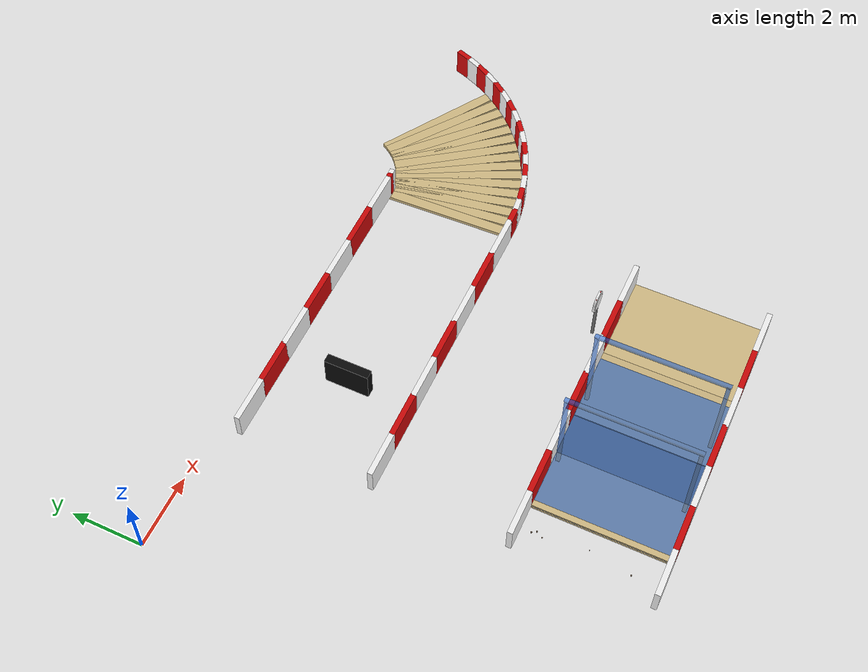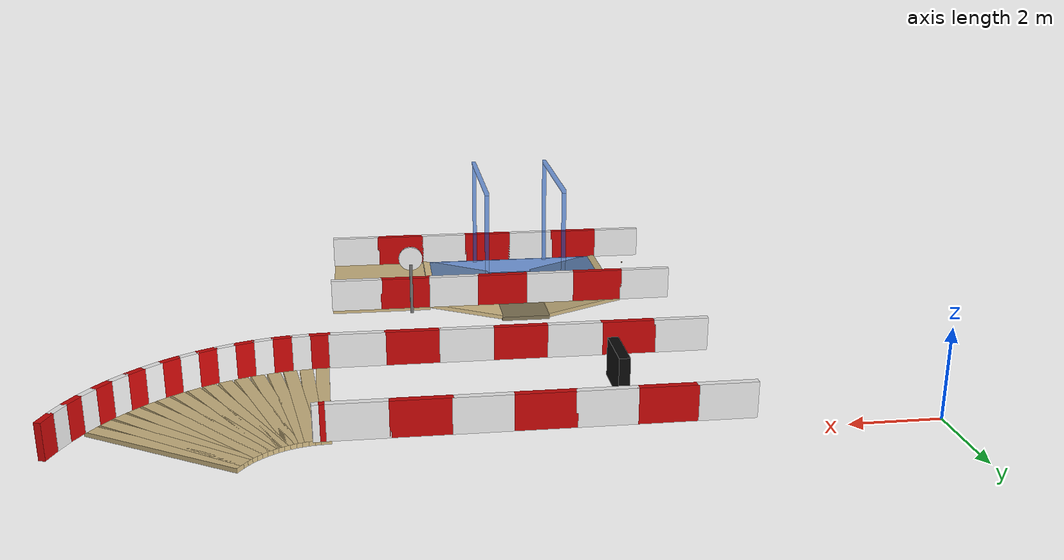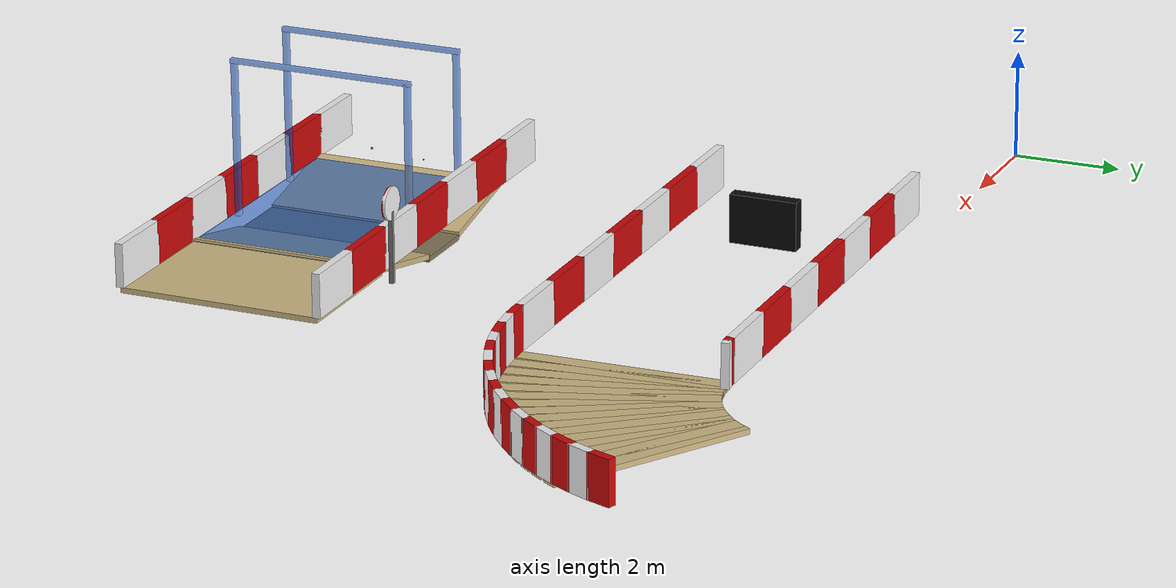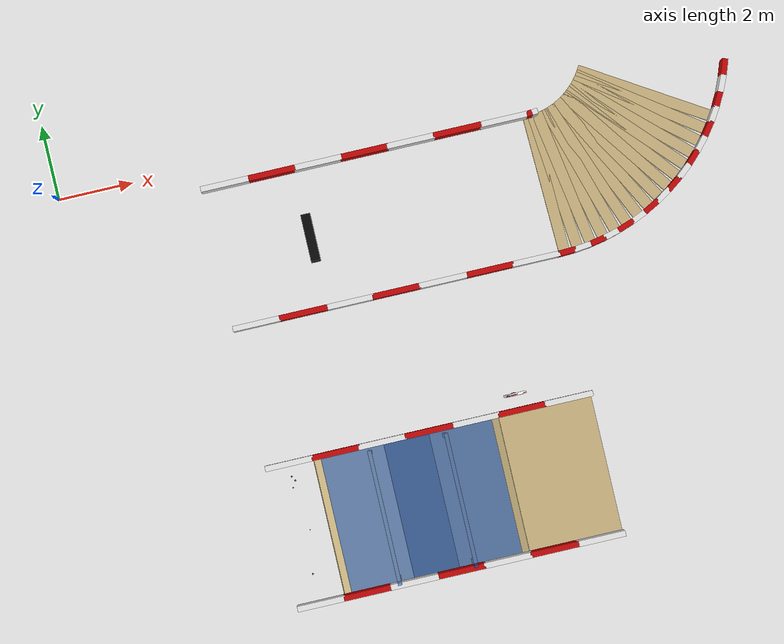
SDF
<sdf version="1.6">
 <world name="evrenos_teknofest_2026">
  <include><uri>model://sun</uri></include>
  <model name="main_course">
   <static>true</static>
   <link name="bottom_start_0">
    <pose>11.250000 -10.000000 -0.050000 0.000000 0.000000 0.000000</pose>
    <collision name="bottom_start_0_collision">
     <geometry><box><size>2.500000 3.750000 0.100000</size></box></geometry>
    </collision>
    <visual name="bottom_start_0_visual">
     <geometry><box><size>2.500000 3.750000 0.100000</size></box></geometry>
     <material><ambient>0.82 0.73 0.52 1</ambient><diffuse>0.82 0.73 0.52 1</diffuse></material>
    </visual>
   </link>
   <link name="water_ramp_down">
    <pose>9.062500 -10.000000 -0.200000 0.000000 -0.210182 0.000000</pose>
    <collision name="water_ramp_down_collision">
     <geometry><box><size>1.917170 3.750000 0.100000</size></box></geometry>
    </collision>
    <visual name="water_ramp_down_visual">
     <geometry><box><size>1.917170 3.750000 0.100000</size></box></geometry>
     <material><ambient>0.82 0.73 0.52 1</ambient><diffuse>0.82 0.73 0.52 1</diffuse></material>
    </visual>
   </link>
   <link name="water_basin_floor">
    <pose>7.500000 -10.000000 -0.450000 0.000000 0.000000 0.000000</pose>
    <collision name="water_basin_floor_collision">
     <geometry><box><size>1.250000 3.750000 0.100000</size></box></geometry>
    </collision>
    <visual name="water_basin_floor_visual">
     <geometry><box><size>1.250000 3.750000 0.100000</size></box></geometry>
     <material><ambient>0.52 0.47 0.35 1</ambient><diffuse>0.52 0.47 0.35 1</diffuse></material>
    </visual>
   </link>
   <link name="water_ramp_up">
    <pose>5.937500 -10.000000 -0.200000 0.000000 0.210182 0.000000</pose>
    <collision name="water_ramp_up_collision">
     <geometry><box><size>1.917170 3.750000 0.100000</size></box></geometry>
    </collision>
    <visual name="water_ramp_up_visual">
     <geometry><box><size>1.917170 3.750000 0.100000</size></box></geometry>
     <material><ambient>0.82 0.73 0.52 1</ambient><diffuse>0.82 0.73 0.52 1</diffuse></material>
    </visual>
   </link>
   <link name="water_surface">
    <pose>7.500000 -10.000000 0.005000 0.000000 0.000000 0.000000</pose>
    <visual name="water_surface_visual">
     <geometry><box><size>5.000000 3.625000 0.010000</size></box></geometry>
     <material><ambient>0.05 0.35 0.85 0.55</ambient><diffuse>0.05 0.35 0.85 0.55</diffuse></material>
    </visual>
   </link>
   <link name="rain_post_5.2_-9.35">
    <pose>6.500000 -11.687500 1.450000 0.000000 0.000000 0.000000</pose>
    <collision name="rain_post_5.2_-9.35_collision">
     <geometry><box><size>0.100000 0.100000 2.900000</size></box></geometry>
    </collision>
    <visual name="rain_post_5.2_-9.35_visual">
     <geometry><box><size>0.100000 0.100000 2.900000</size></box></geometry>
     <material><ambient>0.05 0.35 0.85 0.55</ambient><diffuse>0.05 0.35 0.85 0.55</diffuse></material>
    </visual>
   </link>
   <link name="rain_post_5.2_-6.65">
    <pose>6.500000 -8.312500 1.450000 0.000000 0.000000 0.000000</pose>
    <collision name="rain_post_5.2_-6.65_collision">
     <geometry><box><size>0.100000 0.100000 2.900000</size></box></geometry>
    </collision>
    <visual name="rain_post_5.2_-6.65_visual">
     <geometry><box><size>0.100000 0.100000 2.900000</size></box></geometry>
     <material><ambient>0.05 0.35 0.85 0.55</ambient><diffuse>0.05 0.35 0.85 0.55</diffuse></material>
    </visual>
   </link>
   <link name="rain_post_6.8_-9.35">
    <pose>8.500000 -11.687500 1.450000 0.000000 0.000000 0.000000</pose>
    <collision name="rain_post_6.8_-9.35_collision">
     <geometry><box><size>0.100000 0.100000 2.900000</size></box></geometry>
    </collision>
    <visual name="rain_post_6.8_-9.35_visual">
     <geometry><box><size>0.100000 0.100000 2.900000</size></box></geometry>
     <material><ambient>0.05 0.35 0.85 0.55</ambient><diffuse>0.05 0.35 0.85 0.55</diffuse></material>
    </visual>
   </link>
   <link name="rain_post_6.8_-6.65">
    <pose>8.500000 -8.312500 1.450000 0.000000 0.000000 0.000000</pose>
    <collision name="rain_post_6.8_-6.65_collision">
     <geometry><box><size>0.100000 0.100000 2.900000</size></box></geometry>
    </collision>
    <visual name="rain_post_6.8_-6.65_visual">
     <geometry><box><size>0.100000 0.100000 2.900000</size></box></geometry>
     <material><ambient>0.05 0.35 0.85 0.55</ambient><diffuse>0.05 0.35 0.85 0.55</diffuse></material>
    </visual>
   </link>
   <link name="rain_cross_5.2">
    <pose>6.500000 -10.000000 2.900000 0.000000 0.000000 0.000000</pose>
    <collision name="rain_cross_5.2_collision">
     <geometry><box><size>0.100000 3.500000 0.080000</size></box></geometry>
    </collision>
    <visual name="rain_cross_5.2_visual">
     <geometry><box><size>0.100000 3.500000 0.080000</size></box></geometry>
     <material><ambient>0.05 0.35 0.85 0.55</ambient><diffuse>0.05 0.35 0.85 0.55</diffuse></material>
    </visual>
   </link>
   <link name="rain_cross_6.8">
    <pose>8.500000 -10.000000 2.900000 0.000000 0.000000 0.000000</pose>
    <collision name="rain_cross_6.8_collision">
     <geometry><box><size>0.100000 3.500000 0.080000</size></box></geometry>
    </collision>
    <visual name="rain_cross_6.8_visual">
     <geometry><box><size>0.100000 3.500000 0.080000</size></box></geometry>
     <material><ambient>0.05 0.35 0.85 0.55</ambient><diffuse>0.05 0.35 0.85 0.55</diffuse></material>
    </visual>
   </link>
   <link name="gravel_8">
    <pose>4.409625 -8.604750 0.012400 0.000000 0.000000 0.000000</pose>
    <collision name="gravel_8_collision"><geometry><sphere><radius>0.0225</radius></sphere></geometry></collision>
    <visual name="gravel_8_visual">
     <geometry><sphere><radius>0.0225</radius></sphere></geometry>
     <material><ambient>0.43 0.35 0.27 1</ambient><diffuse>0.43 0.35 0.27 1</diffuse></material>
    </visual>
   </link>
   <link name="gravel_9">
    <pose>4.498500 -9.955875 0.007100 0.000000 0.000000 0.000000</pose>
    <collision name="gravel_9_collision"><geometry><sphere><radius>0.0130</radius></sphere></geometry></collision>
    <visual name="gravel_9_visual">
     <geometry><sphere><radius>0.0130</radius></sphere></geometry>
     <material><ambient>0.43 0.35 0.27 1</ambient><diffuse>0.43 0.35 0.27 1</diffuse></material>
    </visual>
   </link>
   <link name="gravel_35">
    <pose>4.343750 -8.481375 0.012600 0.000000 0.000000 0.000000</pose>
    <collision name="gravel_35_collision">
     <geometry><sphere><radius>0.0230</radius></sphere></geometry>
    </collision>
    <visual name="gravel_35_visual">
     <geometry><sphere><radius>0.0230</radius></sphere></geometry>
     <material><ambient>0.43 0.35 0.27 1</ambient><diffuse>0.43 0.35 0.27 1</diffuse></material>
    </visual>
   </link>
   <link name="gravel_46">
    <pose>4.312250 -8.778000 0.010200 0.000000 0.000000 0.000000</pose>
    <collision name="gravel_46_collision">
     <geometry><sphere><radius>0.0186</radius></sphere></geometry>
    </collision>
    <visual name="gravel_46_visual">
     <geometry><sphere><radius>0.0186</radius></sphere></geometry>
     <material><ambient>0.43 0.35 0.27 1</ambient><diffuse>0.43 0.35 0.27 1</diffuse></material>
    </visual>
   </link>
   <link name="gravel_63">
    <pose>4.304625 -11.103750 0.012600 0.000000 0.000000 0.000000</pose>
    <collision name="gravel_63_collision">
     <geometry><sphere><radius>0.0230</radius></sphere></geometry>
    </collision>
    <visual name="gravel_63_visual">
     <geometry><sphere><radius>0.0230</radius></sphere></geometry>
     <material><ambient>0.43 0.35 0.27 1</ambient><diffuse>0.43 0.35 0.27 1</diffuse></material>
    </visual>
   </link>
   <link name="right_turn_road_0">
    <pose>12.622750 -2.498000 -0.050000 0.000000 0.000000 0.032725</pose>
    <collision name="right_turn_road_0_collision">
     <geometry><box><size>0.294500 3.750000 0.100000</size></box></geometry>
    </collision>
    <visual name="right_turn_road_0_visual">
     <geometry><box><size>0.294500 3.750000 0.100000</size></box></geometry>
     <material><ambient>0.82 0.73 0.52 1</ambient><diffuse>0.82 0.73 0.52 1</diffuse></material>
    </visual>
   </link>
   <link name="right_turn_road_1">
    <pose>12.867625 -2.482000 -0.050000 0.000000 0.000000 0.098175</pose>
    <collision name="right_turn_road_1_collision">
     <geometry><box><size>0.294500 3.750000 0.100000</size></box></geometry>
    </collision>
    <visual name="right_turn_road_1_visual">
     <geometry><box><size>0.294500 3.750000 0.100000</size></box></geometry>
     <material><ambient>0.82 0.73 0.52 1</ambient><diffuse>0.82 0.73 0.52 1</diffuse></material>
    </visual>
   </link>
   <link name="right_turn_road_2">
    <pose>13.110875 -2.449875 -0.050000 0.000000 0.000000 0.163625</pose>
    <collision name="right_turn_road_2_collision">
     <geometry><box><size>0.294500 3.750000 0.100000</size></box></geometry>
    </collision>
    <visual name="right_turn_road_2_visual">
     <geometry><box><size>0.294500 3.750000 0.100000</size></box></geometry>
     <material><ambient>0.82 0.73 0.52 1</ambient><diffuse>0.82 0.73 0.52 1</diffuse></material>
    </visual>
   </link>
   <link name="right_turn_road_3">
    <pose>13.351500 -2.402000 -0.050000 0.000000 0.000000 0.229074</pose>
    <collision name="right_turn_road_3_collision">
     <geometry><box><size>0.294500 3.750000 0.100000</size></box></geometry>
    </collision>
    <visual name="right_turn_road_3_visual">
     <geometry><box><size>0.294500 3.750000 0.100000</size></box></geometry>
     <material><ambient>0.82 0.73 0.52 1</ambient><diffuse>0.82 0.73 0.52 1</diffuse></material>
    </visual>
   </link>
   <link name="right_turn_road_4">
    <pose>13.588625 -2.338500 -0.050000 0.000000 0.000000 0.294524</pose>
    <collision name="right_turn_road_4_collision">
     <geometry><box><size>0.294500 3.750000 0.100000</size></box></geometry>
    </collision>
    <visual name="right_turn_road_4_visual">
     <geometry><box><size>0.294500 3.750000 0.100000</size></box></geometry>
     <material><ambient>0.82 0.73 0.52 1</ambient><diffuse>0.82 0.73 0.52 1</diffuse></material>
    </visual>
   </link>
   <link name="right_turn_road_5">
    <pose>13.821000 -2.259625 -0.050000 0.000000 0.000000 0.359974</pose>
    <collision name="right_turn_road_5_collision">
     <geometry><box><size>0.294500 3.750000 0.100000</size></box></geometry>
    </collision>
    <visual name="right_turn_road_5_visual">
     <geometry><box><size>0.294500 3.750000 0.100000</size></box></geometry>
     <material><ambient>0.82 0.73 0.52 1</ambient><diffuse>0.82 0.73 0.52 1</diffuse></material>
    </visual>
   </link>
   <link name="right_turn_road_6">
    <pose>14.047625 -2.165750 -0.050000 0.000000 0.000000 0.425424</pose>
    <collision name="right_turn_road_6_collision">
     <geometry><box><size>0.294500 3.750000 0.100000</size></box></geometry>
    </collision>
    <visual name="right_turn_road_6_visual">
     <geometry><box><size>0.294500 3.750000 0.100000</size></box></geometry>
     <material><ambient>0.82 0.73 0.52 1</ambient><diffuse>0.82 0.73 0.52 1</diffuse></material>
    </visual>
   </link>
   <link name="right_turn_road_7">
    <pose>14.267750 -2.057250 -0.050000 0.000000 0.000000 0.490874</pose>
    <collision name="right_turn_road_7_collision">
     <geometry><box><size>0.294500 3.750000 0.100000</size></box></geometry>
    </collision>
    <visual name="right_turn_road_7_visual">
     <geometry><box><size>0.294500 3.750000 0.100000</size></box></geometry>
     <material><ambient>0.82 0.73 0.52 1</ambient><diffuse>0.82 0.73 0.52 1</diffuse></material>
    </visual>
   </link>
   <link name="right_turn_road_8">
    <pose>14.480250 -1.934500 -0.050000 0.000000 0.000000 0.556324</pose>
    <collision name="right_turn_road_8_collision">
     <geometry><box><size>0.294500 3.750000 0.100000</size></box></geometry>
    </collision>
    <visual name="right_turn_road_8_visual">
     <geometry><box><size>0.294500 3.750000 0.100000</size></box></geometry>
     <material><ambient>0.82 0.73 0.52 1</ambient><diffuse>0.82 0.73 0.52 1</diffuse></material>
    </visual>
   </link>
   <link name="right_turn_road_9">
    <pose>14.684250 -1.798125 -0.050000 0.000000 0.000000 0.621774</pose>
    <collision name="right_turn_road_9_collision">
     <geometry><box><size>0.294500 3.750000 0.100000</size></box></geometry>
    </collision>
    <visual name="right_turn_road_9_visual">
     <geometry><box><size>0.294500 3.750000 0.100000</size></box></geometry>
     <material><ambient>0.82 0.73 0.52 1</ambient><diffuse>0.82 0.73 0.52 1</diffuse></material>
    </visual>
   </link>
   <link name="right_turn_road_10">
    <pose>14.879000 -1.648750 -0.050000 0.000000 0.000000 0.687223</pose>
    <collision name="right_turn_road_10_collision">
     <geometry><box><size>0.294500 3.750000 0.100000</size></box></geometry>
    </collision>
    <visual name="right_turn_road_10_visual">
     <geometry><box><size>0.294500 3.750000 0.100000</size></box></geometry>
     <material><ambient>0.82 0.73 0.52 1</ambient><diffuse>0.82 0.73 0.52 1</diffuse></material>
    </visual>
   </link>
   <link name="right_turn_road_11">
    <pose>15.063500 -1.487000 -0.050000 0.000000 0.000000 0.752673</pose>
    <collision name="right_turn_road_11_collision">
     <geometry><box><size>0.294500 3.750000 0.100000</size></box></geometry>
    </collision>
    <visual name="right_turn_road_11_visual">
     <geometry><box><size>0.294500 3.750000 0.100000</size></box></geometry>
     <material><ambient>0.82 0.73 0.52 1</ambient><diffuse>0.82 0.73 0.52 1</diffuse></material>
    </visual>
   </link>
   <link name="right_turn_road_12">
    <pose>15.237000 -1.313500 -0.050000 0.000000 0.000000 0.818123</pose>
    <collision name="right_turn_road_12_collision">
     <geometry><box><size>0.294500 3.750000 0.100000</size></box></geometry>
    </collision>
    <visual name="right_turn_road_12_visual">
     <geometry><box><size>0.294500 3.750000 0.100000</size></box></geometry>
     <material><ambient>0.82 0.73 0.52 1</ambient><diffuse>0.82 0.73 0.52 1</diffuse></material>
    </visual>
   </link>
   <link name="right_turn_road_13">
    <pose>15.398750 -1.129000 -0.050000 0.000000 0.000000 0.883573</pose>
    <collision name="right_turn_road_13_collision">
     <geometry><box><size>0.294500 3.750000 0.100000</size></box></geometry>
    </collision>
    <visual name="right_turn_road_13_visual">
     <geometry><box><size>0.294500 3.750000 0.100000</size></box></geometry>
     <material><ambient>0.82 0.73 0.52 1</ambient><diffuse>0.82 0.73 0.52 1</diffuse></material>
    </visual>
   </link>
   <link name="right_turn_road_14">
    <pose>15.548125 -0.934250 -0.050000 0.000000 0.000000 0.949023</pose>
    <collision name="right_turn_road_14_collision">
     <geometry><box><size>0.294500 3.750000 0.100000</size></box></geometry>
    </collision>
    <visual name="right_turn_road_14_visual">
     <geometry><box><size>0.294500 3.750000 0.100000</size></box></geometry>
     <material><ambient>0.82 0.73 0.52 1</ambient><diffuse>0.82 0.73 0.52 1</diffuse></material>
    </visual>
   </link>
   <link name="right_turn_road_15">
    <pose>15.684500 -0.730250 -0.050000 0.000000 0.000000 1.014473</pose>
    <collision name="right_turn_road_15_collision">
     <geometry><box><size>0.294500 3.750000 0.100000</size></box></geometry>
    </collision>
    <visual name="right_turn_road_15_visual">
     <geometry><box><size>0.294500 3.750000 0.100000</size></box></geometry>
     <material><ambient>0.82 0.73 0.52 1</ambient><diffuse>0.82 0.73 0.52 1</diffuse></material>
    </visual>
   </link>
   <link name="bottom_bar_-1_13">
    <pose>4.375000 -11.875000 0.400000 0.000000 0.000000 0.000000</pose>
    <collision name="bottom_bar_-1_13_collision">
     <geometry><box><size>1.287500 0.150000 0.800000</size></box></geometry>
    </collision>
    <visual name="bottom_bar_-1_13_visual">
     <geometry><box><size>1.287500 0.150000 0.800000</size></box></geometry>
     <material><ambient>0.95 0.95 0.95 1</ambient><diffuse>0.95 0.95 0.95 1</diffuse></material>
    </visual>
   </link>
   <link name="bottom_bar_-1_14">
    <pose>5.625000 -11.875000 0.400000 0.000000 0.000000 0.000000</pose>
    <collision name="bottom_bar_-1_14_collision">
     <geometry><box><size>1.287500 0.150000 0.800000</size></box></geometry>
    </collision>
    <visual name="bottom_bar_-1_14_visual">
     <geometry><box><size>1.287500 0.150000 0.800000</size></box></geometry>
     <material><ambient>0.8 0.03 0.03 1</ambient><diffuse>0.8 0.03 0.03 1</diffuse></material>
    </visual>
   </link>
   <link name="bottom_bar_-1_15">
    <pose>6.875000 -11.875000 0.400000 0.000000 0.000000 0.000000</pose>
    <collision name="bottom_bar_-1_15_collision">
     <geometry><box><size>1.287500 0.150000 0.800000</size></box></geometry>
    </collision>
    <visual name="bottom_bar_-1_15_visual">
     <geometry><box><size>1.287500 0.150000 0.800000</size></box></geometry>
     <material><ambient>0.95 0.95 0.95 1</ambient><diffuse>0.95 0.95 0.95 1</diffuse></material>
    </visual>
   </link>
   <link name="bottom_bar_-1_16">
    <pose>8.125000 -11.875000 0.400000 0.000000 0.000000 0.000000</pose>
    <collision name="bottom_bar_-1_16_collision">
     <geometry><box><size>1.287500 0.150000 0.800000</size></box></geometry>
    </collision>
    <visual name="bottom_bar_-1_16_visual">
     <geometry><box><size>1.287500 0.150000 0.800000</size></box></geometry>
     <material><ambient>0.8 0.03 0.03 1</ambient><diffuse>0.8 0.03 0.03 1</diffuse></material>
    </visual>
   </link>
   <link name="bottom_bar_-1_17">
    <pose>9.375000 -11.875000 0.400000 0.000000 0.000000 0.000000</pose>
    <collision name="bottom_bar_-1_17_collision">
     <geometry><box><size>1.287500 0.150000 0.800000</size></box></geometry>
    </collision>
    <visual name="bottom_bar_-1_17_visual">
     <geometry><box><size>1.287500 0.150000 0.800000</size></box></geometry>
     <material><ambient>0.95 0.95 0.95 1</ambient><diffuse>0.95 0.95 0.95 1</diffuse></material>
    </visual>
   </link>
   <link name="bottom_bar_-1_18">
    <pose>10.625000 -11.875000 0.400000 0.000000 0.000000 0.000000</pose>
    <collision name="bottom_bar_-1_18_collision">
     <geometry><box><size>1.287500 0.150000 0.800000</size></box></geometry>
    </collision>
    <visual name="bottom_bar_-1_18_visual">
     <geometry><box><size>1.287500 0.150000 0.800000</size></box></geometry>
     <material><ambient>0.8 0.03 0.03 1</ambient><diffuse>0.8 0.03 0.03 1</diffuse></material>
    </visual>
   </link>
   <link name="bottom_bar_-1_19">
    <pose>11.875000 -11.875000 0.400000 0.000000 0.000000 0.000000</pose>
    <collision name="bottom_bar_-1_19_collision">
     <geometry><box><size>1.287500 0.150000 0.800000</size></box></geometry>
    </collision>
    <visual name="bottom_bar_-1_19_visual">
     <geometry><box><size>1.287500 0.150000 0.800000</size></box></geometry>
     <material><ambient>0.95 0.95 0.95 1</ambient><diffuse>0.95 0.95 0.95 1</diffuse></material>
    </visual>
   </link>
   <link name="bottom_bar_1_13">
    <pose>4.375000 -8.125000 0.400000 0.000000 0.000000 0.000000</pose>
    <collision name="bottom_bar_1_13_collision">
     <geometry><box><size>1.287500 0.150000 0.800000</size></box></geometry>
    </collision>
    <visual name="bottom_bar_1_13_visual">
     <geometry><box><size>1.287500 0.150000 0.800000</size></box></geometry>
     <material><ambient>0.95 0.95 0.95 1</ambient><diffuse>0.95 0.95 0.95 1</diffuse></material>
    </visual>
   </link>
   <link name="bottom_bar_1_14">
    <pose>5.625000 -8.125000 0.400000 0.000000 0.000000 0.000000</pose>
    <collision name="bottom_bar_1_14_collision">
     <geometry><box><size>1.287500 0.150000 0.800000</size></box></geometry>
    </collision>
    <visual name="bottom_bar_1_14_visual">
     <geometry><box><size>1.287500 0.150000 0.800000</size></box></geometry>
     <material><ambient>0.8 0.03 0.03 1</ambient><diffuse>0.8 0.03 0.03 1</diffuse></material>
    </visual>
   </link>
   <link name="bottom_bar_1_15">
    <pose>6.875000 -8.125000 0.400000 0.000000 0.000000 0.000000</pose>
    <collision name="bottom_bar_1_15_collision">
     <geometry><box><size>1.287500 0.150000 0.800000</size></box></geometry>
    </collision>
    <visual name="bottom_bar_1_15_visual">
     <geometry><box><size>1.287500 0.150000 0.800000</size></box></geometry>
     <material><ambient>0.95 0.95 0.95 1</ambient><diffuse>0.95 0.95 0.95 1</diffuse></material>
    </visual>
   </link>
   <link name="bottom_bar_1_16">
    <pose>8.125000 -8.125000 0.400000 0.000000 0.000000 0.000000</pose>
    <collision name="bottom_bar_1_16_collision">
     <geometry><box><size>1.287500 0.150000 0.800000</size></box></geometry>
    </collision>
    <visual name="bottom_bar_1_16_visual">
     <geometry><box><size>1.287500 0.150000 0.800000</size></box></geometry>
     <material><ambient>0.8 0.03 0.03 1</ambient><diffuse>0.8 0.03 0.03 1</diffuse></material>
    </visual>
   </link>
   <link name="bottom_bar_1_17">
    <pose>9.375000 -8.125000 0.400000 0.000000 0.000000 0.000000</pose>
    <collision name="bottom_bar_1_17_collision">
     <geometry><box><size>1.287500 0.150000 0.800000</size></box></geometry>
    </collision>
    <visual name="bottom_bar_1_17_visual">
     <geometry><box><size>1.287500 0.150000 0.800000</size></box></geometry>
     <material><ambient>0.95 0.95 0.95 1</ambient><diffuse>0.95 0.95 0.95 1</diffuse></material>
    </visual>
   </link>
   <link name="bottom_bar_1_18">
    <pose>10.625000 -8.125000 0.400000 0.000000 0.000000 0.000000</pose>
    <collision name="bottom_bar_1_18_collision">
     <geometry><box><size>1.287500 0.150000 0.800000</size></box></geometry>
    </collision>
    <visual name="bottom_bar_1_18_visual">
     <geometry><box><size>1.287500 0.150000 0.800000</size></box></geometry>
     <material><ambient>0.8 0.03 0.03 1</ambient><diffuse>0.8 0.03 0.03 1</diffuse></material>
    </visual>
   </link>
   <link name="bottom_bar_1_19">
    <pose>11.875000 -8.125000 0.400000 0.000000 0.000000 0.000000</pose>
    <collision name="bottom_bar_1_19_collision">
     <geometry><box><size>1.287500 0.150000 0.800000</size></box></geometry>
    </collision>
    <visual name="bottom_bar_1_19_visual">
     <geometry><box><size>1.287500 0.150000 0.800000</size></box></geometry>
     <material><ambient>0.95 0.95 0.95 1</ambient><diffuse>0.95 0.95 0.95 1</diffuse></material>
    </visual>
   </link>
   <link name="middle_bar_-1_13">
    <pose>4.375000 -4.375000 0.400000 0.000000 0.000000 0.000000</pose>
    <collision name="middle_bar_-1_13_collision">
     <geometry><box><size>1.287500 0.150000 0.800000</size></box></geometry>
    </collision>
    <visual name="middle_bar_-1_13_visual">
     <geometry><box><size>1.287500 0.150000 0.800000</size></box></geometry>
     <material><ambient>0.95 0.95 0.95 1</ambient><diffuse>0.95 0.95 0.95 1</diffuse></material>
    </visual>
   </link>
   <link name="middle_bar_-1_14">
    <pose>5.625000 -4.375000 0.400000 0.000000 0.000000 0.000000</pose>
    <collision name="middle_bar_-1_14_collision">
     <geometry><box><size>1.287500 0.150000 0.800000</size></box></geometry>
    </collision>
    <visual name="middle_bar_-1_14_visual">
     <geometry><box><size>1.287500 0.150000 0.800000</size></box></geometry>
     <material><ambient>0.8 0.03 0.03 1</ambient><diffuse>0.8 0.03 0.03 1</diffuse></material>
    </visual>
   </link>
   <link name="middle_bar_-1_15">
    <pose>6.875000 -4.375000 0.400000 0.000000 0.000000 0.000000</pose>
    <collision name="middle_bar_-1_15_collision">
     <geometry><box><size>1.287500 0.150000 0.800000</size></box></geometry>
    </collision>
    <visual name="middle_bar_-1_15_visual">
     <geometry><box><size>1.287500 0.150000 0.800000</size></box></geometry>
     <material><ambient>0.95 0.95 0.95 1</ambient><diffuse>0.95 0.95 0.95 1</diffuse></material>
    </visual>
   </link>
   <link name="middle_bar_-1_16">
    <pose>8.125000 -4.375000 0.400000 0.000000 0.000000 0.000000</pose>
    <collision name="middle_bar_-1_16_collision">
     <geometry><box><size>1.287500 0.150000 0.800000</size></box></geometry>
    </collision>
    <visual name="middle_bar_-1_16_visual">
     <geometry><box><size>1.287500 0.150000 0.800000</size></box></geometry>
     <material><ambient>0.8 0.03 0.03 1</ambient><diffuse>0.8 0.03 0.03 1</diffuse></material>
    </visual>
   </link>
   <link name="middle_bar_-1_17">
    <pose>9.375000 -4.375000 0.400000 0.000000 0.000000 0.000000</pose>
    <collision name="middle_bar_-1_17_collision">
     <geometry><box><size>1.287500 0.150000 0.800000</size></box></geometry>
    </collision>
    <visual name="middle_bar_-1_17_visual">
     <geometry><box><size>1.287500 0.150000 0.800000</size></box></geometry>
     <material><ambient>0.95 0.95 0.95 1</ambient><diffuse>0.95 0.95 0.95 1</diffuse></material>
    </visual>
   </link>
   <link name="middle_bar_-1_18">
    <pose>10.625000 -4.375000 0.400000 0.000000 0.000000 0.000000</pose>
    <collision name="middle_bar_-1_18_collision">
     <geometry><box><size>1.287500 0.150000 0.800000</size></box></geometry>
    </collision>
    <visual name="middle_bar_-1_18_visual">
     <geometry><box><size>1.287500 0.150000 0.800000</size></box></geometry>
     <material><ambient>0.8 0.03 0.03 1</ambient><diffuse>0.8 0.03 0.03 1</diffuse></material>
    </visual>
   </link>
   <link name="middle_bar_-1_19">
    <pose>11.875000 -4.375000 0.400000 0.000000 0.000000 0.000000</pose>
    <collision name="middle_bar_-1_19_collision">
     <geometry><box><size>1.287500 0.150000 0.800000</size></box></geometry>
    </collision>
    <visual name="middle_bar_-1_19_visual">
     <geometry><box><size>1.287500 0.150000 0.800000</size></box></geometry>
     <material><ambient>0.95 0.95 0.95 1</ambient><diffuse>0.95 0.95 0.95 1</diffuse></material>
    </visual>
   </link>
   <link name="middle_bar_1_13">
    <pose>4.375000 -0.625000 0.400000 0.000000 0.000000 0.000000</pose>
    <collision name="middle_bar_1_13_collision">
     <geometry><box><size>1.287500 0.150000 0.800000</size></box></geometry>
    </collision>
    <visual name="middle_bar_1_13_visual">
     <geometry><box><size>1.287500 0.150000 0.800000</size></box></geometry>
     <material><ambient>0.95 0.95 0.95 1</ambient><diffuse>0.95 0.95 0.95 1</diffuse></material>
    </visual>
   </link>
   <link name="middle_bar_1_14">
    <pose>5.625000 -0.625000 0.400000 0.000000 0.000000 0.000000</pose>
    <collision name="middle_bar_1_14_collision">
     <geometry><box><size>1.287500 0.150000 0.800000</size></box></geometry>
    </collision>
    <visual name="middle_bar_1_14_visual">
     <geometry><box><size>1.287500 0.150000 0.800000</size></box></geometry>
     <material><ambient>0.8 0.03 0.03 1</ambient><diffuse>0.8 0.03 0.03 1</diffuse></material>
    </visual>
   </link>
   <link name="middle_bar_1_15">
    <pose>6.875000 -0.625000 0.400000 0.000000 0.000000 0.000000</pose>
    <collision name="middle_bar_1_15_collision">
     <geometry><box><size>1.287500 0.150000 0.800000</size></box></geometry>
    </collision>
    <visual name="middle_bar_1_15_visual">
     <geometry><box><size>1.287500 0.150000 0.800000</size></box></geometry>
     <material><ambient>0.95 0.95 0.95 1</ambient><diffuse>0.95 0.95 0.95 1</diffuse></material>
    </visual>
   </link>
   <link name="middle_bar_1_16">
    <pose>8.125000 -0.625000 0.400000 0.000000 0.000000 0.000000</pose>
    <collision name="middle_bar_1_16_collision">
     <geometry><box><size>1.287500 0.150000 0.800000</size></box></geometry>
    </collision>
    <visual name="middle_bar_1_16_visual">
     <geometry><box><size>1.287500 0.150000 0.800000</size></box></geometry>
     <material><ambient>0.8 0.03 0.03 1</ambient><diffuse>0.8 0.03 0.03 1</diffuse></material>
    </visual>
   </link>
   <link name="middle_bar_1_17">
    <pose>9.375000 -0.625000 0.400000 0.000000 0.000000 0.000000</pose>
    <collision name="middle_bar_1_17_collision">
     <geometry><box><size>1.287500 0.150000 0.800000</size></box></geometry>
    </collision>
    <visual name="middle_bar_1_17_visual">
     <geometry><box><size>1.287500 0.150000 0.800000</size></box></geometry>
     <material><ambient>0.95 0.95 0.95 1</ambient><diffuse>0.95 0.95 0.95 1</diffuse></material>
    </visual>
   </link>
   <link name="middle_bar_1_18">
    <pose>10.625000 -0.625000 0.400000 0.000000 0.000000 0.000000</pose>
    <collision name="middle_bar_1_18_collision">
     <geometry><box><size>1.287500 0.150000 0.800000</size></box></geometry>
    </collision>
    <visual name="middle_bar_1_18_visual">
     <geometry><box><size>1.287500 0.150000 0.800000</size></box></geometry>
     <material><ambient>0.8 0.03 0.03 1</ambient><diffuse>0.8 0.03 0.03 1</diffuse></material>
    </visual>
   </link>
   <link name="middle_bar_1_19">
    <pose>11.875000 -0.625000 0.400000 0.000000 0.000000 0.000000</pose>
    <collision name="middle_bar_1_19_collision">
     <geometry><box><size>1.287500 0.150000 0.800000</size></box></geometry>
    </collision>
    <visual name="middle_bar_1_19_visual">
     <geometry><box><size>1.287500 0.150000 0.800000</size></box></geometry>
     <material><ambient>0.95 0.95 0.95 1</ambient><diffuse>0.95 0.95 0.95 1</diffuse></material>
    </visual>
   </link>
   <link name="right_turn_bar_0_0">
    <pose>12.570125 -0.623750 0.400000 0.000000 0.000000 0.037400</pose>
    <collision name="right_turn_bar_0_0_collision">
     <geometry><box><size>0.154250 0.150000 0.800000</size></box></geometry>
    </collision>
    <visual name="right_turn_bar_0_0_visual">
     <geometry><box><size>0.154250 0.150000 0.800000</size></box></geometry>
     <material><ambient>0.8 0.03 0.03 1</ambient><diffuse>0.8 0.03 0.03 1</diffuse></material>
    </visual>
   </link>
   <link name="right_turn_bar_0_1">
    <pose>12.709875 -0.613250 0.400000 0.000000 0.000000 0.112200</pose>
    <collision name="right_turn_bar_0_1_collision">
     <geometry><box><size>0.154250 0.150000 0.800000</size></box></geometry>
    </collision>
    <visual name="right_turn_bar_0_1_visual">
     <geometry><box><size>0.154250 0.150000 0.800000</size></box></geometry>
     <material><ambient>0.95 0.95 0.95 1</ambient><diffuse>0.95 0.95 0.95 1</diffuse></material>
    </visual>
   </link>
   <link name="right_turn_bar_1_0">
    <pose>12.710375 -4.371125 0.400000 0.000000 0.000000 0.037400</pose>
    <collision name="right_turn_bar_1_0_collision">
     <geometry><box><size>0.462875 0.150000 0.800000</size></box></geometry>
    </collision>
    <visual name="right_turn_bar_1_0_visual">
     <geometry><box><size>0.462875 0.150000 0.800000</size></box></geometry>
     <material><ambient>0.8 0.03 0.03 1</ambient><diffuse>0.8 0.03 0.03 1</diffuse></material>
    </visual>
   </link>
   <link name="right_turn_bar_1_1">
    <pose>13.129750 -4.339625 0.400000 0.000000 0.000000 0.112200</pose>
    <collision name="right_turn_bar_1_1_collision">
     <geometry><box><size>0.462875 0.150000 0.800000</size></box></geometry>
    </collision>
    <visual name="right_turn_bar_1_1_visual">
     <geometry><box><size>0.462875 0.150000 0.800000</size></box></geometry>
     <material><ambient>0.95 0.95 0.95 1</ambient><diffuse>0.95 0.95 0.95 1</diffuse></material>
    </visual>
   </link>
   <link name="right_turn_bar_1_2">
    <pose>13.545750 -4.276875 0.400000 0.000000 0.000000 0.187000</pose>
    <collision name="right_turn_bar_1_2_collision">
     <geometry><box><size>0.462875 0.150000 0.800000</size></box></geometry>
    </collision>
    <visual name="right_turn_bar_1_2_visual">
     <geometry><box><size>0.462875 0.150000 0.800000</size></box></geometry>
     <material><ambient>0.8 0.03 0.03 1</ambient><diffuse>0.8 0.03 0.03 1</diffuse></material>
    </visual>
   </link>
   <link name="right_turn_bar_1_3">
    <pose>13.955875 -4.183375 0.400000 0.000000 0.000000 0.261799</pose>
    <collision name="right_turn_bar_1_3_collision">
     <geometry><box><size>0.462875 0.150000 0.800000</size></box></geometry>
    </collision>
    <visual name="right_turn_bar_1_3_visual">
     <geometry><box><size>0.462875 0.150000 0.800000</size></box></geometry>
     <material><ambient>0.95 0.95 0.95 1</ambient><diffuse>0.95 0.95 0.95 1</diffuse></material>
    </visual>
   </link>
   <link name="right_turn_bar_1_4">
    <pose>14.357875 -4.059375 0.400000 0.000000 0.000000 0.336599</pose>
    <collision name="right_turn_bar_1_4_collision">
     <geometry><box><size>0.462875 0.150000 0.800000</size></box></geometry>
    </collision>
    <visual name="right_turn_bar_1_4_visual">
     <geometry><box><size>0.462875 0.150000 0.800000</size></box></geometry>
     <material><ambient>0.8 0.03 0.03 1</ambient><diffuse>0.8 0.03 0.03 1</diffuse></material>
    </visual>
   </link>
   <link name="right_turn_bar_1_5">
    <pose>14.749375 -3.905625 0.400000 0.000000 0.000000 0.411399</pose>
    <collision name="right_turn_bar_1_5_collision">
     <geometry><box><size>0.462875 0.150000 0.800000</size></box></geometry>
    </collision>
    <visual name="right_turn_bar_1_5_visual">
     <geometry><box><size>0.462875 0.150000 0.800000</size></box></geometry>
     <material><ambient>0.95 0.95 0.95 1</ambient><diffuse>0.95 0.95 0.95 1</diffuse></material>
    </visual>
   </link>
   <link name="right_turn_bar_1_6">
    <pose>15.128375 -3.723125 0.400000 0.000000 0.000000 0.486199</pose>
    <collision name="right_turn_bar_1_6_collision">
     <geometry><box><size>0.462875 0.150000 0.800000</size></box></geometry>
    </collision>
    <visual name="right_turn_bar_1_6_visual">
     <geometry><box><size>0.462875 0.150000 0.800000</size></box></geometry>
     <material><ambient>0.8 0.03 0.03 1</ambient><diffuse>0.8 0.03 0.03 1</diffuse></material>
    </visual>
   </link>
   <link name="right_turn_bar_1_7">
    <pose>15.492625 -3.512875 0.400000 0.000000 0.000000 0.560999</pose>
    <collision name="right_turn_bar_1_7_collision">
     <geometry><box><size>0.462875 0.150000 0.800000</size></box></geometry>
    </collision>
    <visual name="right_turn_bar_1_7_visual">
     <geometry><box><size>0.462875 0.150000 0.800000</size></box></geometry>
     <material><ambient>0.95 0.95 0.95 1</ambient><diffuse>0.95 0.95 0.95 1</diffuse></material>
    </visual>
   </link>
   <link name="right_turn_bar_1_8">
    <pose>15.840250 -3.275875 0.400000 0.000000 0.000000 0.635799</pose>
    <collision name="right_turn_bar_1_8_collision">
     <geometry><box><size>0.462875 0.150000 0.800000</size></box></geometry>
    </collision>
    <visual name="right_turn_bar_1_8_visual">
     <geometry><box><size>0.462875 0.150000 0.800000</size></box></geometry>
     <material><ambient>0.8 0.03 0.03 1</ambient><diffuse>0.8 0.03 0.03 1</diffuse></material>
    </visual>
   </link>
   <link name="right_turn_bar_1_9">
    <pose>16.169125 -3.013625 0.400000 0.000000 0.000000 0.710598</pose>
    <collision name="right_turn_bar_1_9_collision">
     <geometry><box><size>0.462875 0.150000 0.800000</size></box></geometry>
    </collision>
    <visual name="right_turn_bar_1_9_visual">
     <geometry><box><size>0.462875 0.150000 0.800000</size></box></geometry>
     <material><ambient>0.95 0.95 0.95 1</ambient><diffuse>0.95 0.95 0.95 1</diffuse></material>
    </visual>
   </link>
   <link name="right_turn_bar_1_10">
    <pose>16.477500 -2.727500 0.400000 0.000000 0.000000 0.785398</pose>
    <collision name="right_turn_bar_1_10_collision">
     <geometry><box><size>0.462875 0.150000 0.800000</size></box></geometry>
    </collision>
    <visual name="right_turn_bar_1_10_visual">
     <geometry><box><size>0.462875 0.150000 0.800000</size></box></geometry>
     <material><ambient>0.8 0.03 0.03 1</ambient><diffuse>0.8 0.03 0.03 1</diffuse></material>
    </visual>
   </link>
   <link name="right_turn_bar_1_11">
    <pose>16.763625 -2.419125 0.400000 0.000000 0.000000 0.860198</pose>
    <collision name="right_turn_bar_1_11_collision">
     <geometry><box><size>0.462875 0.150000 0.800000</size></box></geometry>
    </collision>
    <visual name="right_turn_bar_1_11_visual">
     <geometry><box><size>0.462875 0.150000 0.800000</size></box></geometry>
     <material><ambient>0.95 0.95 0.95 1</ambient><diffuse>0.95 0.95 0.95 1</diffuse></material>
    </visual>
   </link>
   <link name="right_turn_bar_1_12">
    <pose>17.025875 -2.090250 0.400000 0.000000 0.000000 0.934998</pose>
    <collision name="right_turn_bar_1_12_collision">
     <geometry><box><size>0.462875 0.150000 0.800000</size></box></geometry>
    </collision>
    <visual name="right_turn_bar_1_12_visual">
     <geometry><box><size>0.462875 0.150000 0.800000</size></box></geometry>
     <material><ambient>0.8 0.03 0.03 1</ambient><diffuse>0.8 0.03 0.03 1</diffuse></material>
    </visual>
   </link>
   <link name="right_turn_bar_1_13">
    <pose>17.262875 -1.742625 0.400000 0.000000 0.000000 1.009798</pose>
    <collision name="right_turn_bar_1_13_collision">
     <geometry><box><size>0.462875 0.150000 0.800000</size></box></geometry>
    </collision>
    <visual name="right_turn_bar_1_13_visual">
     <geometry><box><size>0.462875 0.150000 0.800000</size></box></geometry>
     <material><ambient>0.95 0.95 0.95 1</ambient><diffuse>0.95 0.95 0.95 1</diffuse></material>
    </visual>
   </link>
   <link name="right_turn_bar_1_14">
    <pose>17.473125 -1.378375 0.400000 0.000000 0.000000 1.084597</pose>
    <collision name="right_turn_bar_1_14_collision">
     <geometry><box><size>0.462875 0.150000 0.800000</size></box></geometry>
    </collision>
    <visual name="right_turn_bar_1_14_visual">
     <geometry><box><size>0.462875 0.150000 0.800000</size></box></geometry>
     <material><ambient>0.8 0.03 0.03 1</ambient><diffuse>0.8 0.03 0.03 1</diffuse></material>
    </visual>
   </link>
   <link name="right_turn_bar_1_15">
    <pose>17.655625 -0.999375 0.400000 0.000000 0.000000 1.159397</pose>
    <collision name="right_turn_bar_1_15_collision">
     <geometry><box><size>0.462875 0.150000 0.800000</size></box></geometry>
    </collision>
    <visual name="right_turn_bar_1_15_visual">
     <geometry><box><size>0.462875 0.150000 0.800000</size></box></geometry>
     <material><ambient>0.95 0.95 0.95 1</ambient><diffuse>0.95 0.95 0.95 1</diffuse></material>
    </visual>
   </link>
   <link name="right_turn_bar_1_16">
    <pose>17.809375 -0.607875 0.400000 0.000000 0.000000 1.234197</pose>
    <collision name="right_turn_bar_1_16_collision">
     <geometry><box><size>0.462875 0.150000 0.800000</size></box></geometry>
    </collision>
    <visual name="right_turn_bar_1_16_visual">
     <geometry><box><size>0.462875 0.150000 0.800000</size></box></geometry>
     <material><ambient>0.8 0.03 0.03 1</ambient><diffuse>0.8 0.03 0.03 1</diffuse></material>
    </visual>
   </link>
   <link name="stage1_post">
    <pose>10.500000 -7.687500 0.650000 0.000000 0.000000 0.000000</pose>
    <collision name="stage1_post_collision">
     <geometry><box><size>0.075000 0.075000 1.300000</size></box></geometry>
    </collision>
    <visual name="stage1_post_visual">
     <geometry><box><size>0.075000 0.075000 1.300000</size></box></geometry>
     <material><ambient>0.45 0.45 0.45 1</ambient><diffuse>0.45 0.45 0.45 1</diffuse></material>
    </visual>
   </link>
   <link name="stage1_disc">
    <pose>10.500000 -7.687500 1.450000 1.570796 0.000000 0.000000</pose>
    <visual name="stage1_disc_visual">
     <geometry><cylinder><radius>0.300000</radius><length>0.062500</length></cylinder></geometry>
     <material><ambient>0.95 0.95 0.95 1</ambient><diffuse>0.95 0.95 0.95 1</diffuse></material>
    </visual>
   </link>
   <link name="stage1_redring">
    <pose>10.500000 -7.702500 1.450000 1.570796 0.000000 0.000000</pose>
    <visual name="stage1_redring_visual">
     <geometry><cylinder><radius>0.300000</radius><length>0.022500</length></cylinder></geometry>
     <material><ambient>0.8 0.03 0.03 1</ambient><diffuse>0.8 0.03 0.03 1</diffuse></material>
    </visual>
   </link>
   <link name="stage1_inner">
    <pose>10.500000 -7.717500 1.450000 1.570796 0.000000 0.000000</pose>
    <visual name="stage1_inner_visual">
     <geometry><cylinder><radius>0.240000</radius><length>0.025000</length></cylinder></geometry>
     <material><ambient>0.95 0.95 0.95 1</ambient><diffuse>0.95 0.95 0.95 1</diffuse></material>
    </visual>
   </link>
  </model>
  <model name="sliding_obstacle">
   <static>false</static>
   <pose>6.250000 -2.500000 0.450000 0.000000 0.000000 0.000000</pose>
   <link name="barrier_link">
    <gravity>false</gravity>
    <kinematic>true</kinematic>
    <inertial>
     <mass>20.0</mass>
     <inertia><ixx>1</ixx><iyy>1</iyy><izz>1</izz><ixy>0</ixy><ixz>0</ixz><iyz>0</iyz></inertia>
    </inertial>
    <collision name="collision">
     <geometry><box><size>0.250000 1.250000 0.900000</size></box></geometry>
    </collision>
    <visual name="visual">
     <geometry><box><size>0.250000 1.250000 0.900000</size></box></geometry>
     <material><ambient>0.04 0.04 0.04 1</ambient><diffuse>0.04 0.04 0.04 1</diffuse></material>
    </visual>
   </link>
  </model>
 </world>
</sdf>
